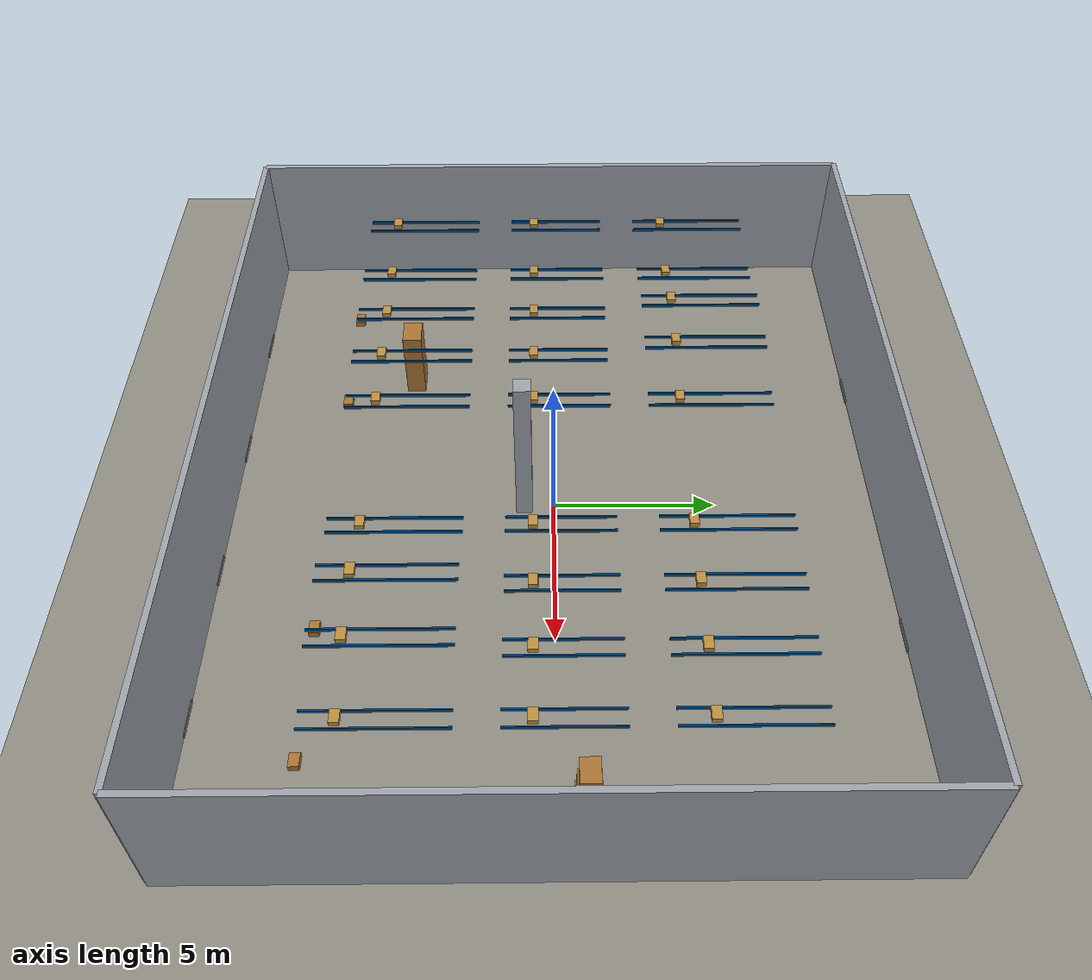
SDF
<sdf version="1.8">
 <world name="warehouse_full_4cam_laptop_640x360_3hz">
  <model name="ground_plane">
   <static>true</static>
   <link name="link">
    <collision name="collision">
     <geometry><plane><normal>0 0 1</normal><size>24.5 20.5</size></plane></geometry>
    </collision>
    <visual name="visual">
     <geometry><plane><normal>0 0 1</normal><size>24.5 20.5</size></plane></geometry>
     <material>
      <ambient>0.56 0.55 0.51 1</ambient>
      <diffuse>0.56 0.55 0.51 1</diffuse>
      <specular>0.05 0.05 0.05 1</specular>
     </material>
    </visual>
   </link>
  </model>
  <model name="warehouse_walls">
   <static>true</static>
   <link name="wall_east">
    <pose>12.000 0.000 2.250 0 0 0</pose>
    <collision name="collision"><geometry><box><size>0.180 20.000 4.500</size></box></geometry></collision>
    <sensor name="contact" type="contact">
     <contact><collision>collision</collision></contact>
     <update_rate>60</update_rate>
    </sensor>
    <visual name="visual">
     <geometry><box><size>0.180 20.000 4.500</size></box></geometry>
     <material><ambient>0.62 0.64 0.67 1</ambient><diffuse>0.62 0.64 0.67 1</diffuse></material>
    </visual>
   </link>
   <link name="wall_west">
    <pose>-12.000 0.000 2.250 0 0 0</pose>
    <collision name="collision"><geometry><box><size>0.180 20.000 4.500</size></box></geometry></collision>
    <sensor name="contact" type="contact">
     <contact><collision>collision</collision></contact>
     <update_rate>60</update_rate>
    </sensor>
    <visual name="visual">
     <geometry><box><size>0.180 20.000 4.500</size></box></geometry>
     <material><ambient>0.62 0.64 0.67 1</ambient><diffuse>0.62 0.64 0.67 1</diffuse></material>
    </visual>
   </link>
   <link name="wall_north">
    <pose>0.000 10.000 2.250 0 0 0</pose>
    <collision name="collision"><geometry><box><size>24.000 0.180 4.500</size></box></geometry></collision>
    <sensor name="contact" type="contact">
     <contact><collision>collision</collision></contact>
     <update_rate>60</update_rate>
    </sensor>
    <visual name="visual">
     <geometry><box><size>24.000 0.180 4.500</size></box></geometry>
     <material><ambient>0.62 0.64 0.67 1</ambient><diffuse>0.62 0.64 0.67 1</diffuse></material>
    </visual>
   </link>
   <link name="wall_south">
    <pose>0.000 -10.000 2.250 0 0 0</pose>
    <collision name="collision"><geometry><box><size>24.000 0.180 4.500</size></box></geometry></collision>
    <sensor name="contact" type="contact">
     <contact><collision>collision</collision></contact>
     <update_rate>60</update_rate>
    </sensor>
    <visual name="visual">
     <geometry><box><size>24.000 0.180 4.500</size></box></geometry>
     <material><ambient>0.62 0.64 0.67 1</ambient><diffuse>0.62 0.64 0.67 1</diffuse></material>
    </visual>
   </link>
   <link name="south_dock_a">
    <pose>-7.500 -9.920 0.075 0 0 0</pose>
    <visual name="visual">
     <geometry><box><size>1.100 0.070 0.150</size></box></geometry>
     <material><ambient>0.50 0.50 0.50 1</ambient><diffuse>0.50 0.50 0.50 1</diffuse></material>
    </visual>
   </link>
   <link name="south_dock_b">
    <pose>-2.500 -9.920 0.075 0 0 0</pose>
    <visual name="visual">
     <geometry><box><size>1.100 0.070 0.150</size></box></geometry>
     <material><ambient>0.50 0.50 0.50 1</ambient><diffuse>0.50 0.50 0.50 1</diffuse></material>
    </visual>
   </link>
   <link name="south_dock_c">
    <pose>2.500 -9.920 0.075 0 0 0</pose>
    <visual name="visual">
     <geometry><box><size>1.100 0.070 0.150</size></box></geometry>
     <material><ambient>0.50 0.50 0.50 1</ambient><diffuse>0.50 0.50 0.50 1</diffuse></material>
    </visual>
   </link>
   <link name="south_dock_d">
    <pose>7.500 -9.920 0.075 0 0 0</pose>
    <visual name="visual">
     <geometry><box><size>1.100 0.070 0.150</size></box></geometry>
     <material><ambient>0.50 0.50 0.50 1</ambient><diffuse>0.50 0.50 0.50 1</diffuse></material>
    </visual>
   </link>
   <link name="north_dock_a">
    <pose>-5.000 9.920 0.075 0 0 0</pose>
    <visual name="visual">
     <geometry><box><size>1.100 0.070 0.150</size></box></geometry>
     <material><ambient>0.50 0.50 0.50 1</ambient><diffuse>0.50 0.50 0.50 1</diffuse></material>
    </visual>
   </link>
   <link name="north_dock_b">
    <pose>5.000 9.920 0.075 0 0 0</pose>
    <visual name="visual">
     <geometry><box><size>1.100 0.070 0.150</size></box></geometry>
     <material><ambient>0.50 0.50 0.50 1</ambient><diffuse>0.50 0.50 0.50 1</diffuse></material>
    </visual>
   </link>
  </model>
  <model name="warehouse_rack_occluders">
   <static>true</static>
   <link name="rack_W1_south">
    <pose>-8.825 -4.550 1.045 0 0 0</pose>
    <collision name="collision"><geometry><box><size>0.550 3.900 2.090</size></box></geometry></collision>
    <sensor name="contact" type="contact">
     <contact><collision>collision</collision></contact>
     <update_rate>60</update_rate>
    </sensor>
   </link>
   <link name="rail_W1_south_west">
    <pose>-9.080 -4.550 2.160 0 0 0</pose>
    <visual name="visual">
     <geometry><box><size>0.040 3.900 0.100</size></box></geometry>
     <material><ambient>0.00 0.28 0.50 1</ambient><diffuse>0.00 0.28 0.50 1</diffuse></material>
    </visual>
   </link>
   <link name="rail_W1_south_east">
    <pose>-8.570 -4.550 2.160 0 0 0</pose>
    <visual name="visual">
     <geometry><box><size>0.040 3.900 0.100</size></box></geometry>
     <material><ambient>0.00 0.28 0.50 1</ambient><diffuse>0.00 0.28 0.50 1</diffuse></material>
    </visual>
   </link>
   <link name="shelfbox_W1_south">
    <pose>-8.825 -5.525 2.290 0 0 0</pose>
    <visual name="visual">
     <geometry><box><size>0.390 0.270 0.160</size></box></geometry>
     <material><ambient>0.75 0.56 0.24 1</ambient><diffuse>0.75 0.56 0.24 1</diffuse></material>
    </visual>
   </link>
   <link name="rack_W1_mid">
    <pose>-8.825 0.200 1.045 0 0 0</pose>
    <collision name="collision"><geometry><box><size>0.550 3.200 2.090</size></box></geometry></collision>
    <sensor name="contact" type="contact">
     <contact><collision>collision</collision></contact>
     <update_rate>60</update_rate>
    </sensor>
   </link>
   <link name="rail_W1_mid_west">
    <pose>-9.080 0.200 2.160 0 0 0</pose>
    <visual name="visual">
     <geometry><box><size>0.040 3.200 0.100</size></box></geometry>
     <material><ambient>0.00 0.28 0.50 1</ambient><diffuse>0.00 0.28 0.50 1</diffuse></material>
    </visual>
   </link>
   <link name="rail_W1_mid_east">
    <pose>-8.570 0.200 2.160 0 0 0</pose>
    <visual name="visual">
     <geometry><box><size>0.040 3.200 0.100</size></box></geometry>
     <material><ambient>0.00 0.28 0.50 1</ambient><diffuse>0.00 0.28 0.50 1</diffuse></material>
    </visual>
   </link>
   <link name="shelfbox_W1_mid">
    <pose>-8.825 -0.600 2.290 0 0 0</pose>
    <visual name="visual">
     <geometry><box><size>0.390 0.270 0.160</size></box></geometry>
     <material><ambient>0.75 0.56 0.24 1</ambient><diffuse>0.75 0.56 0.24 1</diffuse></material>
    </visual>
   </link>
   <link name="rack_W1_north">
    <pose>-8.825 4.950 1.045 0 0 0</pose>
    <collision name="collision"><geometry><box><size>0.550 3.900 2.090</size></box></geometry></collision>
    <sensor name="contact" type="contact">
     <contact><collision>collision</collision></contact>
     <update_rate>60</update_rate>
    </sensor>
   </link>
   <link name="rail_W1_north_west">
    <pose>-9.080 4.950 2.160 0 0 0</pose>
    <visual name="visual">
     <geometry><box><size>0.040 3.900 0.100</size></box></geometry>
     <material><ambient>0.00 0.28 0.50 1</ambient><diffuse>0.00 0.28 0.50 1</diffuse></material>
    </visual>
   </link>
   <link name="rail_W1_north_east">
    <pose>-8.570 4.950 2.160 0 0 0</pose>
    <visual name="visual">
     <geometry><box><size>0.040 3.900 0.100</size></box></geometry>
     <material><ambient>0.00 0.28 0.50 1</ambient><diffuse>0.00 0.28 0.50 1</diffuse></material>
    </visual>
   </link>
   <link name="shelfbox_W1_north">
    <pose>-8.825 3.975 2.290 0 0 0</pose>
    <visual name="visual">
     <geometry><box><size>0.390 0.270 0.160</size></box></geometry>
     <material><ambient>0.75 0.56 0.24 1</ambient><diffuse>0.75 0.56 0.24 1</diffuse></material>
    </visual>
   </link>
   <link name="rack_W2_south">
    <pose>-6.725 -4.550 1.045 0 0 0</pose>
    <collision name="collision"><geometry><box><size>0.550 3.900 2.090</size></box></geometry></collision>
    <sensor name="contact" type="contact">
     <contact><collision>collision</collision></contact>
     <update_rate>60</update_rate>
    </sensor>
   </link>
   <link name="rail_W2_south_west">
    <pose>-6.980 -4.550 2.160 0 0 0</pose>
    <visual name="visual">
     <geometry><box><size>0.040 3.900 0.100</size></box></geometry>
     <material><ambient>0.00 0.28 0.50 1</ambient><diffuse>0.00 0.28 0.50 1</diffuse></material>
    </visual>
   </link>
   <link name="rail_W2_south_east">
    <pose>-6.470 -4.550 2.160 0 0 0</pose>
    <visual name="visual">
     <geometry><box><size>0.040 3.900 0.100</size></box></geometry>
     <material><ambient>0.00 0.28 0.50 1</ambient><diffuse>0.00 0.28 0.50 1</diffuse></material>
    </visual>
   </link>
   <link name="shelfbox_W2_south">
    <pose>-6.725 -5.525 2.290 0 0 0</pose>
    <visual name="visual">
     <geometry><box><size>0.390 0.270 0.160</size></box></geometry>
     <material><ambient>0.75 0.56 0.24 1</ambient><diffuse>0.75 0.56 0.24 1</diffuse></material>
    </visual>
   </link>
   <link name="rack_W2_mid">
    <pose>-6.725 0.200 1.045 0 0 0</pose>
    <collision name="collision"><geometry><box><size>0.550 3.200 2.090</size></box></geometry></collision>
    <sensor name="contact" type="contact">
     <contact><collision>collision</collision></contact>
     <update_rate>60</update_rate>
    </sensor>
   </link>
   <link name="rail_W2_mid_west">
    <pose>-6.980 0.200 2.160 0 0 0</pose>
    <visual name="visual">
     <geometry><box><size>0.040 3.200 0.100</size></box></geometry>
     <material><ambient>0.00 0.28 0.50 1</ambient><diffuse>0.00 0.28 0.50 1</diffuse></material>
    </visual>
   </link>
   <link name="rail_W2_mid_east">
    <pose>-6.470 0.200 2.160 0 0 0</pose>
    <visual name="visual">
     <geometry><box><size>0.040 3.200 0.100</size></box></geometry>
     <material><ambient>0.00 0.28 0.50 1</ambient><diffuse>0.00 0.28 0.50 1</diffuse></material>
    </visual>
   </link>
   <link name="shelfbox_W2_mid">
    <pose>-6.725 -0.600 2.290 0 0 0</pose>
    <visual name="visual">
     <geometry><box><size>0.390 0.270 0.160</size></box></geometry>
     <material><ambient>0.75 0.56 0.24 1</ambient><diffuse>0.75 0.56 0.24 1</diffuse></material>
    </visual>
   </link>
   <link name="rack_W2_north">
    <pose>-6.725 4.950 1.305 0 0 0</pose>
    <collision name="collision"><geometry><box><size>0.550 3.900 2.610</size></box></geometry></collision>
    <sensor name="contact" type="contact">
     <contact><collision>collision</collision></contact>
     <update_rate>60</update_rate>
    </sensor>
   </link>
   <link name="rail_W2_north_west">
    <pose>-6.980 4.950 2.680 0 0 0</pose>
    <visual name="visual">
     <geometry><box><size>0.040 3.900 0.100</size></box></geometry>
     <material><ambient>0.00 0.28 0.50 1</ambient><diffuse>0.00 0.28 0.50 1</diffuse></material>
    </visual>
   </link>
   <link name="rail_W2_north_east">
    <pose>-6.470 4.950 2.680 0 0 0</pose>
    <visual name="visual">
     <geometry><box><size>0.040 3.900 0.100</size></box></geometry>
     <material><ambient>0.00 0.28 0.50 1</ambient><diffuse>0.00 0.28 0.50 1</diffuse></material>
    </visual>
   </link>
   <link name="shelfbox_W2_north">
    <pose>-6.725 3.975 2.810 0 0 0</pose>
    <visual name="visual">
     <geometry><box><size>0.390 0.270 0.160</size></box></geometry>
     <material><ambient>0.75 0.56 0.24 1</ambient><diffuse>0.75 0.56 0.24 1</diffuse></material>
    </visual>
   </link>
   <link name="rack_W3_south">
    <pose>-4.625 -4.550 1.045 0 0 0</pose>
    <collision name="collision"><geometry><box><size>0.550 3.900 2.090</size></box></geometry></collision>
    <sensor name="contact" type="contact">
     <contact><collision>collision</collision></contact>
     <update_rate>60</update_rate>
    </sensor>
   </link>
   <link name="rail_W3_south_west">
    <pose>-4.880 -4.550 2.160 0 0 0</pose>
    <visual name="visual">
     <geometry><box><size>0.040 3.900 0.100</size></box></geometry>
     <material><ambient>0.00 0.28 0.50 1</ambient><diffuse>0.00 0.28 0.50 1</diffuse></material>
    </visual>
   </link>
   <link name="rail_W3_south_east">
    <pose>-4.370 -4.550 2.160 0 0 0</pose>
    <visual name="visual">
     <geometry><box><size>0.040 3.900 0.100</size></box></geometry>
     <material><ambient>0.00 0.28 0.50 1</ambient><diffuse>0.00 0.28 0.50 1</diffuse></material>
    </visual>
   </link>
   <link name="shelfbox_W3_south">
    <pose>-4.625 -5.525 2.290 0 0 0</pose>
    <visual name="visual">
     <geometry><box><size>0.390 0.270 0.160</size></box></geometry>
     <material><ambient>0.75 0.56 0.24 1</ambient><diffuse>0.75 0.56 0.24 1</diffuse></material>
    </visual>
   </link>
   <link name="rack_W3_mid">
    <pose>-4.625 0.200 1.045 0 0 0</pose>
    <collision name="collision"><geometry><box><size>0.550 3.200 2.090</size></box></geometry></collision>
    <sensor name="contact" type="contact">
     <contact><collision>collision</collision></contact>
     <update_rate>60</update_rate>
    </sensor>
   </link>
   <link name="rail_W3_mid_west">
    <pose>-4.880 0.200 2.160 0 0 0</pose>
    <visual name="visual">
     <geometry><box><size>0.040 3.200 0.100</size></box></geometry>
     <material><ambient>0.00 0.28 0.50 1</ambient><diffuse>0.00 0.28 0.50 1</diffuse></material>
    </visual>
   </link>
   <link name="rail_W3_mid_east">
    <pose>-4.370 0.200 2.160 0 0 0</pose>
    <visual name="visual">
     <geometry><box><size>0.040 3.200 0.100</size></box></geometry>
     <material><ambient>0.00 0.28 0.50 1</ambient><diffuse>0.00 0.28 0.50 1</diffuse></material>
    </visual>
   </link>
   <link name="shelfbox_W3_mid">
    <pose>-4.625 -0.600 2.290 0 0 0</pose>
    <visual name="visual">
     <geometry><box><size>0.390 0.270 0.160</size></box></geometry>
     <material><ambient>0.75 0.56 0.24 1</ambient><diffuse>0.75 0.56 0.24 1</diffuse></material>
    </visual>
   </link>
   <link name="rack_W3_north">
    <pose>-4.625 4.950 1.305 0 0 0</pose>
    <collision name="collision"><geometry><box><size>0.550 3.900 2.610</size></box></geometry></collision>
    <sensor name="contact" type="contact">
     <contact><collision>collision</collision></contact>
     <update_rate>60</update_rate>
    </sensor>
   </link>
   <link name="rail_W3_north_west">
    <pose>-4.880 4.950 2.680 0 0 0</pose>
    <visual name="visual">
     <geometry><box><size>0.040 3.900 0.100</size></box></geometry>
     <material><ambient>0.00 0.28 0.50 1</ambient><diffuse>0.00 0.28 0.50 1</diffuse></material>
    </visual>
   </link>
   <link name="rail_W3_north_east">
    <pose>-4.370 4.950 2.680 0 0 0</pose>
    <visual name="visual">
     <geometry><box><size>0.040 3.900 0.100</size></box></geometry>
     <material><ambient>0.00 0.28 0.50 1</ambient><diffuse>0.00 0.28 0.50 1</diffuse></material>
    </visual>
   </link>
   <link name="shelfbox_W3_north">
    <pose>-4.625 3.975 2.810 0 0 0</pose>
    <visual name="visual">
     <geometry><box><size>0.390 0.270 0.160</size></box></geometry>
     <material><ambient>0.75 0.56 0.24 1</ambient><diffuse>0.75 0.56 0.24 1</diffuse></material>
    </visual>
   </link>
   <link name="rack_W4_south">
    <pose>-2.525 -4.550 1.045 0 0 0</pose>
    <collision name="collision"><geometry><box><size>0.550 3.900 2.090</size></box></geometry></collision>
    <sensor name="contact" type="contact">
     <contact><collision>collision</collision></contact>
     <update_rate>60</update_rate>
    </sensor>
   </link>
   <link name="rail_W4_south_west">
    <pose>-2.780 -4.550 2.160 0 0 0</pose>
    <visual name="visual">
     <geometry><box><size>0.040 3.900 0.100</size></box></geometry>
     <material><ambient>0.00 0.28 0.50 1</ambient><diffuse>0.00 0.28 0.50 1</diffuse></material>
    </visual>
   </link>
   <link name="rail_W4_south_east">
    <pose>-2.270 -4.550 2.160 0 0 0</pose>
    <visual name="visual">
     <geometry><box><size>0.040 3.900 0.100</size></box></geometry>
     <material><ambient>0.00 0.28 0.50 1</ambient><diffuse>0.00 0.28 0.50 1</diffuse></material>
    </visual>
   </link>
   <link name="shelfbox_W4_south">
    <pose>-2.525 -5.525 2.290 0 0 0</pose>
    <visual name="visual">
     <geometry><box><size>0.390 0.270 0.160</size></box></geometry>
     <material><ambient>0.75 0.56 0.24 1</ambient><diffuse>0.75 0.56 0.24 1</diffuse></material>
    </visual>
   </link>
   <link name="rack_W4_mid">
    <pose>-2.525 0.200 1.045 0 0 0</pose>
    <collision name="collision"><geometry><box><size>0.550 3.200 2.090</size></box></geometry></collision>
    <sensor name="contact" type="contact">
     <contact><collision>collision</collision></contact>
     <update_rate>60</update_rate>
    </sensor>
   </link>
   <link name="rail_W4_mid_west">
    <pose>-2.780 0.200 2.160 0 0 0</pose>
    <visual name="visual">
     <geometry><box><size>0.040 3.200 0.100</size></box></geometry>
     <material><ambient>0.00 0.28 0.50 1</ambient><diffuse>0.00 0.28 0.50 1</diffuse></material>
    </visual>
   </link>
   <link name="rail_W4_mid_east">
    <pose>-2.270 0.200 2.160 0 0 0</pose>
    <visual name="visual">
     <geometry><box><size>0.040 3.200 0.100</size></box></geometry>
     <material><ambient>0.00 0.28 0.50 1</ambient><diffuse>0.00 0.28 0.50 1</diffuse></material>
    </visual>
   </link>
   <link name="shelfbox_W4_mid">
    <pose>-2.525 -0.600 2.290 0 0 0</pose>
    <visual name="visual">
     <geometry><box><size>0.390 0.270 0.160</size></box></geometry>
     <material><ambient>0.75 0.56 0.24 1</ambient><diffuse>0.75 0.56 0.24 1</diffuse></material>
    </visual>
   </link>
   <link name="rack_W4_north">
    <pose>-2.525 4.950 1.045 0 0 0</pose>
    <collision name="collision"><geometry><box><size>0.550 3.900 2.090</size></box></geometry></collision>
    <sensor name="contact" type="contact">
     <contact><collision>collision</collision></contact>
     <update_rate>60</update_rate>
    </sensor>
   </link>
   <link name="rail_W4_north_west">
    <pose>-2.780 4.950 2.160 0 0 0</pose>
    <visual name="visual">
     <geometry><box><size>0.040 3.900 0.100</size></box></geometry>
     <material><ambient>0.00 0.28 0.50 1</ambient><diffuse>0.00 0.28 0.50 1</diffuse></material>
    </visual>
   </link>
   <link name="rail_W4_north_east">
    <pose>-2.270 4.950 2.160 0 0 0</pose>
    <visual name="visual">
     <geometry><box><size>0.040 3.900 0.100</size></box></geometry>
     <material><ambient>0.00 0.28 0.50 1</ambient><diffuse>0.00 0.28 0.50 1</diffuse></material>
    </visual>
   </link>
   <link name="shelfbox_W4_north">
    <pose>-2.525 3.975 2.290 0 0 0</pose>
    <visual name="visual">
     <geometry><box><size>0.390 0.270 0.160</size></box></geometry>
     <material><ambient>0.75 0.56 0.24 1</ambient><diffuse>0.75 0.56 0.24 1</diffuse></material>
    </visual>
   </link>
   <link name="rack_E1_south">
    <pose>2.525 -4.550 1.045 0 0 0</pose>
    <collision name="collision"><geometry><box><size>0.550 3.900 2.090</size></box></geometry></collision>
    <sensor name="contact" type="contact">
     <contact><collision>collision</collision></contact>
     <update_rate>60</update_rate>
    </sensor>
   </link>
   <link name="rail_E1_south_west">
    <pose>2.270 -4.550 2.160 0 0 0</pose>
    <visual name="visual">
     <geometry><box><size>0.040 3.900 0.100</size></box></geometry>
     <material><ambient>0.00 0.28 0.50 1</ambient><diffuse>0.00 0.28 0.50 1</diffuse></material>
    </visual>
   </link>
   <link name="rail_E1_south_east">
    <pose>2.780 -4.550 2.160 0 0 0</pose>
    <visual name="visual">
     <geometry><box><size>0.040 3.900 0.100</size></box></geometry>
     <material><ambient>0.00 0.28 0.50 1</ambient><diffuse>0.00 0.28 0.50 1</diffuse></material>
    </visual>
   </link>
   <link name="shelfbox_E1_south">
    <pose>2.525 -5.525 2.290 0 0 0</pose>
    <visual name="visual">
     <geometry><box><size>0.390 0.270 0.160</size></box></geometry>
     <material><ambient>0.75 0.56 0.24 1</ambient><diffuse>0.75 0.56 0.24 1</diffuse></material>
    </visual>
   </link>
   <link name="rack_E1_mid">
    <pose>2.525 0.200 1.045 0 0 0</pose>
    <collision name="collision"><geometry><box><size>0.550 3.200 2.090</size></box></geometry></collision>
    <sensor name="contact" type="contact">
     <contact><collision>collision</collision></contact>
     <update_rate>60</update_rate>
    </sensor>
   </link>
   <link name="rail_E1_mid_west">
    <pose>2.270 0.200 2.160 0 0 0</pose>
    <visual name="visual">
     <geometry><box><size>0.040 3.200 0.100</size></box></geometry>
     <material><ambient>0.00 0.28 0.50 1</ambient><diffuse>0.00 0.28 0.50 1</diffuse></material>
    </visual>
   </link>
   <link name="rail_E1_mid_east">
    <pose>2.780 0.200 2.160 0 0 0</pose>
    <visual name="visual">
     <geometry><box><size>0.040 3.200 0.100</size></box></geometry>
     <material><ambient>0.00 0.28 0.50 1</ambient><diffuse>0.00 0.28 0.50 1</diffuse></material>
    </visual>
   </link>
   <link name="shelfbox_E1_mid">
    <pose>2.525 -0.600 2.290 0 0 0</pose>
    <visual name="visual">
     <geometry><box><size>0.390 0.270 0.160</size></box></geometry>
     <material><ambient>0.75 0.56 0.24 1</ambient><diffuse>0.75 0.56 0.24 1</diffuse></material>
    </visual>
   </link>
   <link name="rack_E1_north">
    <pose>2.525 4.950 1.045 0 0 0</pose>
    <collision name="collision"><geometry><box><size>0.550 3.900 2.090</size></box></geometry></collision>
    <sensor name="contact" type="contact">
     <contact><collision>collision</collision></contact>
     <update_rate>60</update_rate>
    </sensor>
   </link>
   <link name="rail_E1_north_west">
    <pose>2.270 4.950 2.160 0 0 0</pose>
    <visual name="visual">
     <geometry><box><size>0.040 3.900 0.100</size></box></geometry>
     <material><ambient>0.00 0.28 0.50 1</ambient><diffuse>0.00 0.28 0.50 1</diffuse></material>
    </visual>
   </link>
   <link name="rail_E1_north_east">
    <pose>2.780 4.950 2.160 0 0 0</pose>
    <visual name="visual">
     <geometry><box><size>0.040 3.900 0.100</size></box></geometry>
     <material><ambient>0.00 0.28 0.50 1</ambient><diffuse>0.00 0.28 0.50 1</diffuse></material>
    </visual>
   </link>
   <link name="shelfbox_E1_north">
    <pose>2.525 3.975 2.290 0 0 0</pose>
    <visual name="visual">
     <geometry><box><size>0.390 0.270 0.160</size></box></geometry>
     <material><ambient>0.75 0.56 0.24 1</ambient><diffuse>0.75 0.56 0.24 1</diffuse></material>
    </visual>
   </link>
   <link name="rack_E2_south">
    <pose>4.625 -4.550 1.305 0 0 0</pose>
    <collision name="collision"><geometry><box><size>0.550 3.900 2.610</size></box></geometry></collision>
    <sensor name="contact" type="contact">
     <contact><collision>collision</collision></contact>
     <update_rate>60</update_rate>
    </sensor>
   </link>
   <link name="rail_E2_south_west">
    <pose>4.370 -4.550 2.680 0 0 0</pose>
    <visual name="visual">
     <geometry><box><size>0.040 3.900 0.100</size></box></geometry>
     <material><ambient>0.00 0.28 0.50 1</ambient><diffuse>0.00 0.28 0.50 1</diffuse></material>
    </visual>
   </link>
   <link name="rail_E2_south_east">
    <pose>4.880 -4.550 2.680 0 0 0</pose>
    <visual name="visual">
     <geometry><box><size>0.040 3.900 0.100</size></box></geometry>
     <material><ambient>0.00 0.28 0.50 1</ambient><diffuse>0.00 0.28 0.50 1</diffuse></material>
    </visual>
   </link>
   <link name="shelfbox_E2_south">
    <pose>4.625 -5.525 2.810 0 0 0</pose>
    <visual name="visual">
     <geometry><box><size>0.390 0.270 0.160</size></box></geometry>
     <material><ambient>0.75 0.56 0.24 1</ambient><diffuse>0.75 0.56 0.24 1</diffuse></material>
    </visual>
   </link>
   <link name="rack_E2_mid">
    <pose>4.625 0.200 1.045 0 0 0</pose>
    <collision name="collision"><geometry><box><size>0.550 3.200 2.090</size></box></geometry></collision>
    <sensor name="contact" type="contact">
     <contact><collision>collision</collision></contact>
     <update_rate>60</update_rate>
    </sensor>
   </link>
   <link name="rail_E2_mid_west">
    <pose>4.370 0.200 2.160 0 0 0</pose>
    <visual name="visual">
     <geometry><box><size>0.040 3.200 0.100</size></box></geometry>
     <material><ambient>0.00 0.28 0.50 1</ambient><diffuse>0.00 0.28 0.50 1</diffuse></material>
    </visual>
   </link>
   <link name="rail_E2_mid_east">
    <pose>4.880 0.200 2.160 0 0 0</pose>
    <visual name="visual">
     <geometry><box><size>0.040 3.200 0.100</size></box></geometry>
     <material><ambient>0.00 0.28 0.50 1</ambient><diffuse>0.00 0.28 0.50 1</diffuse></material>
    </visual>
   </link>
   <link name="shelfbox_E2_mid">
    <pose>4.625 -0.600 2.290 0 0 0</pose>
    <visual name="visual">
     <geometry><box><size>0.390 0.270 0.160</size></box></geometry>
     <material><ambient>0.75 0.56 0.24 1</ambient><diffuse>0.75 0.56 0.24 1</diffuse></material>
    </visual>
   </link>
   <link name="rack_E2_north">
    <pose>4.625 4.950 1.045 0 0 0</pose>
    <collision name="collision"><geometry><box><size>0.550 3.900 2.090</size></box></geometry></collision>
    <sensor name="contact" type="contact">
     <contact><collision>collision</collision></contact>
     <update_rate>60</update_rate>
    </sensor>
   </link>
   <link name="rail_E2_north_west">
    <pose>4.370 4.950 2.160 0 0 0</pose>
    <visual name="visual">
     <geometry><box><size>0.040 3.900 0.100</size></box></geometry>
     <material><ambient>0.00 0.28 0.50 1</ambient><diffuse>0.00 0.28 0.50 1</diffuse></material>
    </visual>
   </link>
   <link name="rail_E2_north_east">
    <pose>4.880 4.950 2.160 0 0 0</pose>
    <visual name="visual">
     <geometry><box><size>0.040 3.900 0.100</size></box></geometry>
     <material><ambient>0.00 0.28 0.50 1</ambient><diffuse>0.00 0.28 0.50 1</diffuse></material>
    </visual>
   </link>
   <link name="shelfbox_E2_north">
    <pose>4.625 3.975 2.290 0 0 0</pose>
    <visual name="visual">
     <geometry><box><size>0.390 0.270 0.160</size></box></geometry>
     <material><ambient>0.75 0.56 0.24 1</ambient><diffuse>0.75 0.56 0.24 1</diffuse></material>
    </visual>
   </link>
   <link name="rack_E3_south">
    <pose>6.725 -4.550 1.305 0 0 0</pose>
    <collision name="collision"><geometry><box><size>0.550 3.900 2.610</size></box></geometry></collision>
    <sensor name="contact" type="contact">
     <contact><collision>collision</collision></contact>
     <update_rate>60</update_rate>
    </sensor>
   </link>
   <link name="rail_E3_south_west">
    <pose>6.470 -4.550 2.680 0 0 0</pose>
    <visual name="visual">
     <geometry><box><size>0.040 3.900 0.100</size></box></geometry>
     <material><ambient>0.00 0.28 0.50 1</ambient><diffuse>0.00 0.28 0.50 1</diffuse></material>
    </visual>
   </link>
   <link name="rail_E3_south_east">
    <pose>6.980 -4.550 2.680 0 0 0</pose>
    <visual name="visual">
     <geometry><box><size>0.040 3.900 0.100</size></box></geometry>
     <material><ambient>0.00 0.28 0.50 1</ambient><diffuse>0.00 0.28 0.50 1</diffuse></material>
    </visual>
   </link>
   <link name="shelfbox_E3_south">
    <pose>6.725 -5.525 2.810 0 0 0</pose>
    <visual name="visual">
     <geometry><box><size>0.390 0.270 0.160</size></box></geometry>
     <material><ambient>0.75 0.56 0.24 1</ambient><diffuse>0.75 0.56 0.24 1</diffuse></material>
    </visual>
   </link>
   <link name="rack_E3_mid">
    <pose>6.725 0.200 1.045 0 0 0</pose>
    <collision name="collision"><geometry><box><size>0.550 3.200 2.090</size></box></geometry></collision>
    <sensor name="contact" type="contact">
     <contact><collision>collision</collision></contact>
     <update_rate>60</update_rate>
    </sensor>
   </link>
   <link name="rail_E3_mid_west">
    <pose>6.470 0.200 2.160 0 0 0</pose>
    <visual name="visual">
     <geometry><box><size>0.040 3.200 0.100</size></box></geometry>
     <material><ambient>0.00 0.28 0.50 1</ambient><diffuse>0.00 0.28 0.50 1</diffuse></material>
    </visual>
   </link>
   <link name="rail_E3_mid_east">
    <pose>6.980 0.200 2.160 0 0 0</pose>
    <visual name="visual">
     <geometry><box><size>0.040 3.200 0.100</size></box></geometry>
     <material><ambient>0.00 0.28 0.50 1</ambient><diffuse>0.00 0.28 0.50 1</diffuse></material>
    </visual>
   </link>
   <link name="shelfbox_E3_mid">
    <pose>6.725 -0.600 2.290 0 0 0</pose>
    <visual name="visual">
     <geometry><box><size>0.390 0.270 0.160</size></box></geometry>
     <material><ambient>0.75 0.56 0.24 1</ambient><diffuse>0.75 0.56 0.24 1</diffuse></material>
    </visual>
   </link>
   <link name="rack_E3_north">
    <pose>6.725 4.950 1.045 0 0 0</pose>
    <collision name="collision"><geometry><box><size>0.550 3.900 2.090</size></box></geometry></collision>
    <sensor name="contact" type="contact">
     <contact><collision>collision</collision></contact>
     <update_rate>60</update_rate>
    </sensor>
   </link>
   <link name="rail_E3_north_west">
    <pose>6.470 4.950 2.160 0 0 0</pose>
    <visual name="visual">
     <geometry><box><size>0.040 3.900 0.100</size></box></geometry>
     <material><ambient>0.00 0.28 0.50 1</ambient><diffuse>0.00 0.28 0.50 1</diffuse></material>
    </visual>
   </link>
   <link name="rail_E3_north_east">
    <pose>6.980 4.950 2.160 0 0 0</pose>
    <visual name="visual">
     <geometry><box><size>0.040 3.900 0.100</size></box></geometry>
     <material><ambient>0.00 0.28 0.50 1</ambient><diffuse>0.00 0.28 0.50 1</diffuse></material>
    </visual>
   </link>
   <link name="shelfbox_E3_north">
    <pose>6.725 3.975 2.290 0 0 0</pose>
    <visual name="visual">
     <geometry><box><size>0.390 0.270 0.160</size></box></geometry>
     <material><ambient>0.75 0.56 0.24 1</ambient><diffuse>0.75 0.56 0.24 1</diffuse></material>
    </visual>
   </link>
   <link name="rack_E4_south">
    <pose>8.825 -4.550 1.045 0 0 0</pose>
    <collision name="collision"><geometry><box><size>0.550 3.900 2.090</size></box></geometry></collision>
    <sensor name="contact" type="contact">
     <contact><collision>collision</collision></contact>
     <update_rate>60</update_rate>
    </sensor>
   </link>
   <link name="rail_E4_south_west">
    <pose>8.570 -4.550 2.160 0 0 0</pose>
    <visual name="visual">
     <geometry><box><size>0.040 3.900 0.100</size></box></geometry>
     <material><ambient>0.00 0.28 0.50 1</ambient><diffuse>0.00 0.28 0.50 1</diffuse></material>
    </visual>
   </link>
   <link name="rail_E4_south_east">
    <pose>9.080 -4.550 2.160 0 0 0</pose>
    <visual name="visual">
     <geometry><box><size>0.040 3.900 0.100</size></box></geometry>
     <material><ambient>0.00 0.28 0.50 1</ambient><diffuse>0.00 0.28 0.50 1</diffuse></material>
    </visual>
   </link>
   <link name="shelfbox_E4_south">
    <pose>8.825 -5.525 2.290 0 0 0</pose>
    <visual name="visual">
     <geometry><box><size>0.390 0.270 0.160</size></box></geometry>
     <material><ambient>0.75 0.56 0.24 1</ambient><diffuse>0.75 0.56 0.24 1</diffuse></material>
    </visual>
   </link>
   <link name="rack_E4_mid">
    <pose>8.825 0.200 1.045 0 0 0</pose>
    <collision name="collision"><geometry><box><size>0.550 3.200 2.090</size></box></geometry></collision>
    <sensor name="contact" type="contact">
     <contact><collision>collision</collision></contact>
     <update_rate>60</update_rate>
    </sensor>
   </link>
   <link name="rail_E4_mid_west">
    <pose>8.570 0.200 2.160 0 0 0</pose>
    <visual name="visual">
     <geometry><box><size>0.040 3.200 0.100</size></box></geometry>
     <material><ambient>0.00 0.28 0.50 1</ambient><diffuse>0.00 0.28 0.50 1</diffuse></material>
    </visual>
   </link>
   <link name="rail_E4_mid_east">
    <pose>9.080 0.200 2.160 0 0 0</pose>
    <visual name="visual">
     <geometry><box><size>0.040 3.200 0.100</size></box></geometry>
     <material><ambient>0.00 0.28 0.50 1</ambient><diffuse>0.00 0.28 0.50 1</diffuse></material>
    </visual>
   </link>
   <link name="shelfbox_E4_mid">
    <pose>8.825 -0.600 2.290 0 0 0</pose>
    <visual name="visual">
     <geometry><box><size>0.390 0.270 0.160</size></box></geometry>
     <material><ambient>0.75 0.56 0.24 1</ambient><diffuse>0.75 0.56 0.24 1</diffuse></material>
    </visual>
   </link>
   <link name="rack_E4_north">
    <pose>8.825 4.950 1.045 0 0 0</pose>
    <collision name="collision"><geometry><box><size>0.550 3.900 2.090</size></box></geometry></collision>
    <sensor name="contact" type="contact">
     <contact><collision>collision</collision></contact>
     <update_rate>60</update_rate>
    </sensor>
   </link>
   <link name="rail_E4_north_west">
    <pose>8.570 4.950 2.160 0 0 0</pose>
    <visual name="visual">
     <geometry><box><size>0.040 3.900 0.100</size></box></geometry>
     <material><ambient>0.00 0.28 0.50 1</ambient><diffuse>0.00 0.28 0.50 1</diffuse></material>
    </visual>
   </link>
   <link name="rail_E4_north_east">
    <pose>9.080 4.950 2.160 0 0 0</pose>
    <visual name="visual">
     <geometry><box><size>0.040 3.900 0.100</size></box></geometry>
     <material><ambient>0.00 0.28 0.50 1</ambient><diffuse>0.00 0.28 0.50 1</diffuse></material>
    </visual>
   </link>
   <link name="shelfbox_E4_north">
    <pose>8.825 3.975 2.290 0 0 0</pose>
    <visual name="visual">
     <geometry><box><size>0.390 0.270 0.160</size></box></geometry>
     <material><ambient>0.75 0.56 0.24 1</ambient><diffuse>0.75 0.56 0.24 1</diffuse></material>
    </visual>
   </link>
   <link name="rack_W0_south">
    <pose>-11.635 -4.550 1.045 0 0 0</pose>
    <collision name="collision"><geometry><box><size>0.550 3.900 2.090</size></box></geometry></collision>
    <sensor name="contact" type="contact">
     <contact><collision>collision</collision></contact>
     <update_rate>60</update_rate>
    </sensor>
   </link>
   <link name="rail_W0_south_west">
    <pose>-11.890 -4.550 2.160 0 0 0</pose>
    <visual name="visual">
     <geometry><box><size>0.040 3.900 0.100</size></box></geometry>
     <material><ambient>0.00 0.28 0.50 1</ambient><diffuse>0.00 0.28 0.50 1</diffuse></material>
    </visual>
   </link>
   <link name="rail_W0_south_east">
    <pose>-11.380 -4.550 2.160 0 0 0</pose>
    <visual name="visual">
     <geometry><box><size>0.040 3.900 0.100</size></box></geometry>
     <material><ambient>0.00 0.28 0.50 1</ambient><diffuse>0.00 0.28 0.50 1</diffuse></material>
    </visual>
   </link>
   <link name="shelfbox_W0_south">
    <pose>-11.635 -5.525 2.290 0 0 0</pose>
    <visual name="visual">
     <geometry><box><size>0.390 0.270 0.160</size></box></geometry>
     <material><ambient>0.75 0.56 0.24 1</ambient><diffuse>0.75 0.56 0.24 1</diffuse></material>
    </visual>
   </link>
   <link name="rack_W0_mid">
    <pose>-11.635 0.200 1.045 0 0 0</pose>
    <collision name="collision"><geometry><box><size>0.550 3.200 2.090</size></box></geometry></collision>
    <sensor name="contact" type="contact">
     <contact><collision>collision</collision></contact>
     <update_rate>60</update_rate>
    </sensor>
   </link>
   <link name="rail_W0_mid_west">
    <pose>-11.890 0.200 2.160 0 0 0</pose>
    <visual name="visual">
     <geometry><box><size>0.040 3.200 0.100</size></box></geometry>
     <material><ambient>0.00 0.28 0.50 1</ambient><diffuse>0.00 0.28 0.50 1</diffuse></material>
    </visual>
   </link>
   <link name="rail_W0_mid_east">
    <pose>-11.380 0.200 2.160 0 0 0</pose>
    <visual name="visual">
     <geometry><box><size>0.040 3.200 0.100</size></box></geometry>
     <material><ambient>0.00 0.28 0.50 1</ambient><diffuse>0.00 0.28 0.50 1</diffuse></material>
    </visual>
   </link>
   <link name="shelfbox_W0_mid">
    <pose>-11.635 -0.600 2.290 0 0 0</pose>
    <visual name="visual">
     <geometry><box><size>0.390 0.270 0.160</size></box></geometry>
     <material><ambient>0.75 0.56 0.24 1</ambient><diffuse>0.75 0.56 0.24 1</diffuse></material>
    </visual>
   </link>
   <link name="rack_W0_north">
    <pose>-11.635 4.950 1.045 0 0 0</pose>
    <collision name="collision"><geometry><box><size>0.550 3.900 2.090</size></box></geometry></collision>
    <sensor name="contact" type="contact">
     <contact><collision>collision</collision></contact>
     <update_rate>60</update_rate>
    </sensor>
   </link>
   <link name="rail_W0_north_west">
    <pose>-11.890 4.950 2.160 0 0 0</pose>
    <visual name="visual">
     <geometry><box><size>0.040 3.900 0.100</size></box></geometry>
     <material><ambient>0.00 0.28 0.50 1</ambient><diffuse>0.00 0.28 0.50 1</diffuse></material>
    </visual>
   </link>
   <link name="rail_W0_north_east">
    <pose>-11.380 4.950 2.160 0 0 0</pose>
    <visual name="visual">
     <geometry><box><size>0.040 3.900 0.100</size></box></geometry>
     <material><ambient>0.00 0.28 0.50 1</ambient><diffuse>0.00 0.28 0.50 1</diffuse></material>
    </visual>
   </link>
   <link name="shelfbox_W0_north">
    <pose>-11.635 3.975 2.290 0 0 0</pose>
    <visual name="visual">
     <geometry><box><size>0.390 0.270 0.160</size></box></geometry>
     <material><ambient>0.75 0.56 0.24 1</ambient><diffuse>0.75 0.56 0.24 1</diffuse></material>
    </visual>
   </link>
   <link name="support_pillar">
    <pose>0.000 -0.900 2.600 0 0 0</pose>
    <collision name="collision"><geometry><box><size>0.500 0.500 5.200</size></box></geometry></collision>
    <sensor name="contact" type="contact">
     <contact><collision>collision</collision></contact>
     <update_rate>60</update_rate>
    </sensor>
    <visual name="visual">
     <geometry><box><size>0.500 0.500 5.200</size></box></geometry>
     <material><ambient>0.62 0.64 0.67 1</ambient><diffuse>0.62 0.64 0.67 1</diffuse></material>
    </visual>
   </link>
   <link name="island_stack_0">
    <pose>10.200 0.800 0.350 0 0 0</pose>
    <collision name="collision"><geometry><box><size>0.900 0.700 0.700</size></box></geometry></collision>
    <sensor name="contact" type="contact">
     <contact><collision>collision</collision></contact>
     <update_rate>60</update_rate>
    </sensor>
    <visual name="visual">
     <geometry><box><size>0.900 0.700 0.700</size></box></geometry>
     <material><ambient>0.67 0.46 0.20 1</ambient><diffuse>0.67 0.46 0.20 1</diffuse></material>
    </visual>
   </link>
   <link name="island_stack_1">
    <pose>10.200 0.800 1.050 0 0 0</pose>
    <collision name="collision"><geometry><box><size>0.820 0.620 0.700</size></box></geometry></collision>
    <sensor name="contact" type="contact">
     <contact><collision>collision</collision></contact>
     <update_rate>60</update_rate>
    </sensor>
    <visual name="visual">
     <geometry><box><size>0.820 0.620 0.700</size></box></geometry>
     <material><ambient>0.67 0.46 0.20 1</ambient><diffuse>0.67 0.46 0.20 1</diffuse></material>
    </visual>
   </link>
   <link name="island_stack_2">
    <pose>10.200 0.800 1.750 0 0 0</pose>
    <collision name="collision"><geometry><box><size>0.720 0.540 0.620</size></box></geometry></collision>
    <sensor name="contact" type="contact">
     <contact><collision>collision</collision></contact>
     <update_rate>60</update_rate>
    </sensor>
    <visual name="visual">
     <geometry><box><size>0.720 0.540 0.620</size></box></geometry>
     <material><ambient>0.67 0.46 0.20 1</ambient><diffuse>0.67 0.46 0.20 1</diffuse></material>
    </visual>
   </link>
   <link name="dropped_stack_WA2">
    <pose>-5.675 -4.600 1.150 0 0 0</pose>
    <collision name="collision"><geometry><box><size>0.900 0.600 2.300</size></box></geometry></collision>
    <sensor name="contact" type="contact">
     <contact><collision>collision</collision></contact>
     <update_rate>60</update_rate>
    </sensor>
    <visual name="visual">
     <geometry><box><size>0.900 0.600 2.300</size></box></geometry>
     <material><ambient>0.67 0.46 0.20 1</ambient><diffuse>0.67 0.46 0.20 1</diffuse></material>
    </visual>
   </link>
   <link name="low_crate_0">
    <pose>-8.825 -6.850 0.110 0 0 0</pose>
    <collision name="collision"><geometry><box><size>0.420 0.300 0.220</size></box></geometry></collision>
    <sensor name="contact" type="contact">
     <contact><collision>collision</collision></contact>
     <update_rate>60</update_rate>
    </sensor>
    <visual name="visual">
     <geometry><box><size>0.420 0.300 0.220</size></box></geometry>
     <material><ambient>0.67 0.46 0.20 1</ambient><diffuse>0.67 0.46 0.20 1</diffuse></material>
    </visual>
   </link>
   <link name="low_crate_1">
    <pose>-4.625 -6.850 0.110 0 0 0</pose>
    <collision name="collision"><geometry><box><size>0.420 0.300 0.220</size></box></geometry></collision>
    <sensor name="contact" type="contact">
     <contact><collision>collision</collision></contact>
     <update_rate>60</update_rate>
    </sensor>
    <visual name="visual">
     <geometry><box><size>0.420 0.300 0.220</size></box></geometry>
     <material><ambient>0.67 0.46 0.20 1</ambient><diffuse>0.67 0.46 0.20 1</diffuse></material>
    </visual>
   </link>
   <link name="low_crate_2">
    <pose>4.625 -6.850 0.110 0 0 0</pose>
    <collision name="collision"><geometry><box><size>0.420 0.300 0.220</size></box></geometry></collision>
    <sensor name="contact" type="contact">
     <contact><collision>collision</collision></contact>
     <update_rate>60</update_rate>
    </sensor>
    <visual name="visual">
     <geometry><box><size>0.420 0.300 0.220</size></box></geometry>
     <material><ambient>0.67 0.46 0.20 1</ambient><diffuse>0.67 0.46 0.20 1</diffuse></material>
    </visual>
   </link>
   <link name="low_crate_3">
    <pose>8.825 -6.850 0.110 0 0 0</pose>
    <collision name="collision"><geometry><box><size>0.420 0.300 0.220</size></box></geometry></collision>
    <sensor name="contact" type="contact">
     <contact><collision>collision</collision></contact>
     <update_rate>60</update_rate>
    </sensor>
    <visual name="visual">
     <geometry><box><size>0.420 0.300 0.220</size></box></geometry>
     <material><ambient>0.67 0.46 0.20 1</ambient><diffuse>0.67 0.46 0.20 1</diffuse></material>
    </visual>
   </link>
  </model>
 </world>
</sdf>
